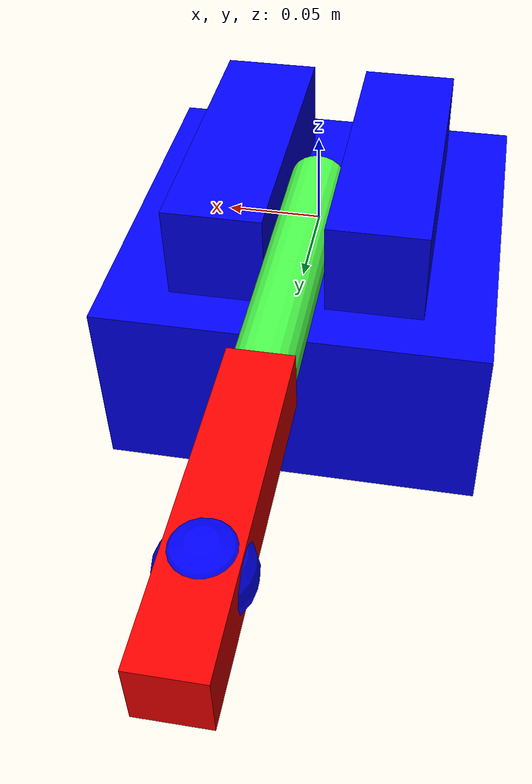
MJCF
<mujoco model="lever_model">
    <compiler angle="radian" />
    <worldbody>
    <body>
    <body name="object">
    <body name="base" pos="0 0 -.05">
        <geom name="base" type="box" size=".1 .1 .05" pos="0 0 0" rgba="0 0 1 1" group="0"/>
        <geom name="s1" type="box" size=".025 .075 .025" pos=" .04 0 .075" rgba="0 0 1 1" group="0"/>
        <geom name="s2" type="box" size=".025 .075 .025" pos="-.04 0 .075" rgba="0 0 1 1" group="0"/>
    </body>

    <body name="link_1" pos="0 .15 .025">
        <geom name="lever_base" rgba="0.3 1 0.3 1" size=".015 .075 .015" pos="0 -.075 0" euler="-1.57 0 0" type="cylinder" margin="0.001"
                group="0"
        />

          <geom name="lever" rgba="1 0 0 1" size=".015 .075 .015"  pos="0 .075 0" euler="0 0 0" type="box" margin="0.001"
                group="0"
            />

          <joint type="hinge" range="0 1.75" axis="1 0 0" name="joint_1" pos="0 -.15 0"  armature="0"/>
          <site name="handle" pos="0 0.1 0" size="0.02" rgba="0 0 1 1" />
        </body>
    </body>
    <site name="bottom_site" pos="0 0 -0.3" rgba="0 0 0 0" size="0.005"/>
    <site name="top_site" pos="0 0 0.3" rgba="0 0 0 0" size="0.005"/>
    <site name="horizontal_radius_site" pos="0.3 0 0" rgba="0 0 0 0" size="0.1"/>
    </body>
    </worldbody>
</mujoco>
